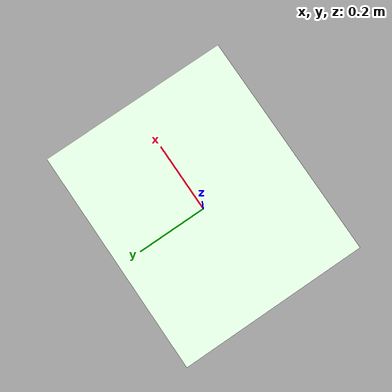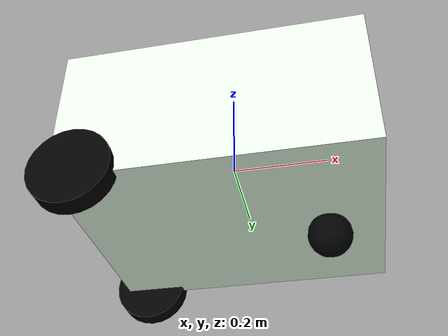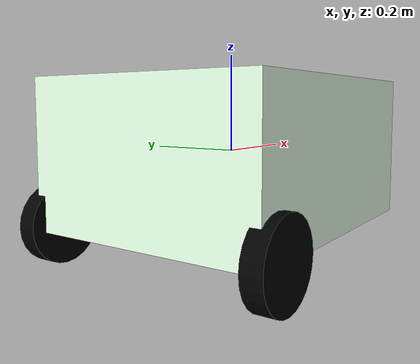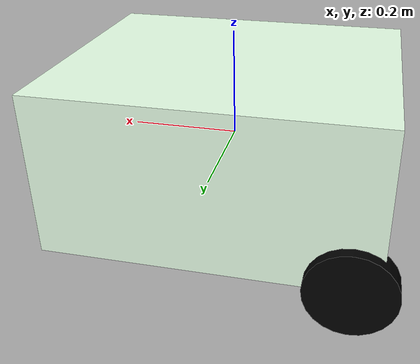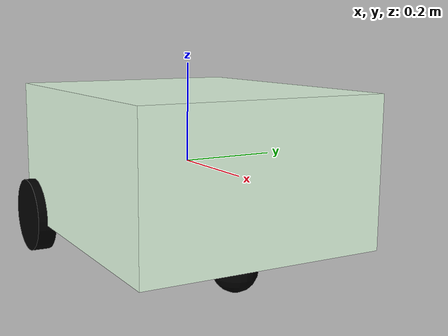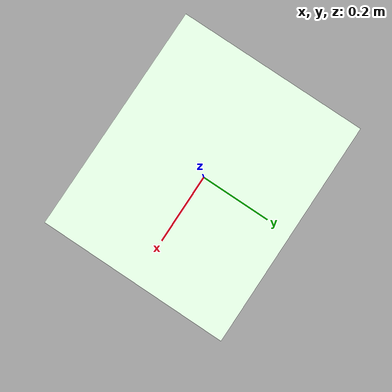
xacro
<?xml version="1.0"?>
<robot xmlns:xacro="http://www.ros.org/wiki/xacro" name="simple_diff_drive">

  <xacro:property name="base_link_size" value="0.6 0.5 0.3"/>
  <xacro:property name="right_drive_radius" value="0.08"/>
  <xacro:property name="right_drive_length" value="0.04"/>
  <xacro:property name="left_drive_radius" value="0.08"/>
  <xacro:property name="left_drive_length" value="0.04"/>
  <xacro:property name="front_driven_radius" value="0.0446"/>

  <xacro:property name="h" value="0.6"/>
  <xacro:property name="w" value="0.5"/>
  <xacro:property name="d" value="0.3"/>

  <material name="green">
    <color rgba="0 0.4 0.2 1"/>
  </material>
  <material name="dark_green">
    <color rgba="0 0.05 0 1"/>
  </material>
  <material name="light_green">
    <color rgba="0.9 1.0 0.9 1"/>
  </material>
  <material name="black">
    <color rgba="0 0 0 1"/>
  </material>

  <link name="base_link">
    <visual>
      <geometry>
        <box size="${h} ${w} ${d}"/>
      </geometry>
       <material name="light_green"/>
    </visual>
    <collision>
      <geometry>
        <box size="${h} ${w} ${d}"/>
      </geometry>
    </collision>
    <inertial>
      <mass value="10"/>
      <inertia ixx="${1 / 12 * 10 * (w * w + d * d)}"
               ixy="0.0"
               ixz="0.0"
               iyy="${1 / 12 * 10 * (h * h + d * d)}"
               iyz="0.0"
               izz="${1 / 12 * 10 * (w * w + h * h)}"/>
    </inertial>
  </link>

  <link name="right_drive_link">
    <visual>
      <geometry>
        <cylinder radius="${right_drive_radius}" length="${right_drive_length}"/>
      </geometry>
      <material name="black"/>
    </visual>
    <collision>
      <geometry>
        <cylinder radius="${right_drive_radius}" length="${right_drive_length}"/>
      </geometry>
    </collision>
    <inertial>
      <mass value="1"/>
      <inertia ixx="${1 / 12 * (3 * right_drive_radius * right_drive_radius + right_drive_length + right_drive_length)}"
               ixy="0.0"
               ixz="0.0"
               iyy="${1 / 12 * (3 * right_drive_radius * right_drive_radius + right_drive_length + right_drive_length)}"
               iyz="0.0"
               izz="${1 / 12 * (3 * right_drive_radius * right_drive_radius + right_drive_length + right_drive_length)}"/>
    </inertial>
  </link>

  <joint name="base_right_drive_joint" type="continuous">
    <parent link="base_link"/>
    <child link="right_drive_link"/>
    <origin xyz="-0.25 -0.25 -0.14" rpy="1.5708 0 0"/>
    <axis xyz="0 0 -2"/>
  </joint>

  <link name="left_drive_link">
    <visual>
      <geometry>
        <cylinder radius="${left_drive_radius}" length="${left_drive_length}"/>
      </geometry>
      <material name="black"/>
    </visual>
    <collision>
      <geometry>
        <cylinder radius="${left_drive_radius}" length="${left_drive_length}"/>
      </geometry>
    </collision>
    <inertial>
      <mass value="1"/>
      <inertia ixx="${1 / 12 * (3 * left_drive_radius * left_drive_radius + left_drive_length + left_drive_length)}"
               ixy="0.0"
               ixz="0.0"
               iyy="${1 / 12 * (3 * left_drive_radius * left_drive_radius + left_drive_length + left_drive_length)}"
               iyz="0.0"
               izz="${1 / 12 * (3 * left_drive_radius * left_drive_radius + left_drive_length + left_drive_length)}"/>
    </inertial>
  </link>

  <joint name="base_left_drive_joint" type="continuous">
    <parent link="base_link"/>
    <child link="left_drive_link"/>
    <origin xyz="-0.25 0.25 -0.14" rpy="1.5708 0 0"/>
    <axis xyz="0 0 -2"/>
  </joint>

  <link name="front_driven_link">
    <visual>
      <geometry>
        <sphere radius="${front_driven_radius}"/>
      </geometry>
      <material name="black"/>
    </visual>
    <collision>
      <geometry>
        <sphere radius="${front_driven_radius}"/>
      </geometry>
    </collision>
    <inertial>
      <mass value="1"/>
      <inertia ixx="${2 / 5 * front_driven_radius * front_driven_radius}"
               ixy="0.0"
               ixz="0.0"
               iyy="${2 / 5 * front_driven_radius * front_driven_radius}"
               iyz="0.0"
               izz="${2 / 5 * front_driven_radius * front_driven_radius}"/>
    </inertial>
  </link>

  <joint name="base_driven_joint" type="fixed">
    <parent link="base_link"/>
    <child link="front_driven_link"/>
    <origin xyz="0.19 0 -0.18" rpy="0 0 0"/>
  </joint>

  <gazebo reference="front_driven_link">
    <mu1 value="0.001"/>
    <mu2 value="0.001"/>
  </gazebo>

  <gazebo>
    <plugin
        filename="gz-sim-joint-state-publisher-system"
        name="gz::sim::systems::JointStatePublisher">
    </plugin>

    <plugin
        filename="gz-sim-diff-drive-system"
        name="gz::sim::systems::DiffDrive">
        <left_joint>base_left_drive_joint</left_joint>
        <right_joint>base_right_drive_joint</right_joint>
        <child_frame_id>robot/base_link</child_frame_id>
        <wheel_separation>0.5</wheel_separation>
        <wheel_radius>0.08</wheel_radius>
        <odom_publish_frequency>6</odom_publish_frequency>
    </plugin>
  </gazebo>

</robot>
